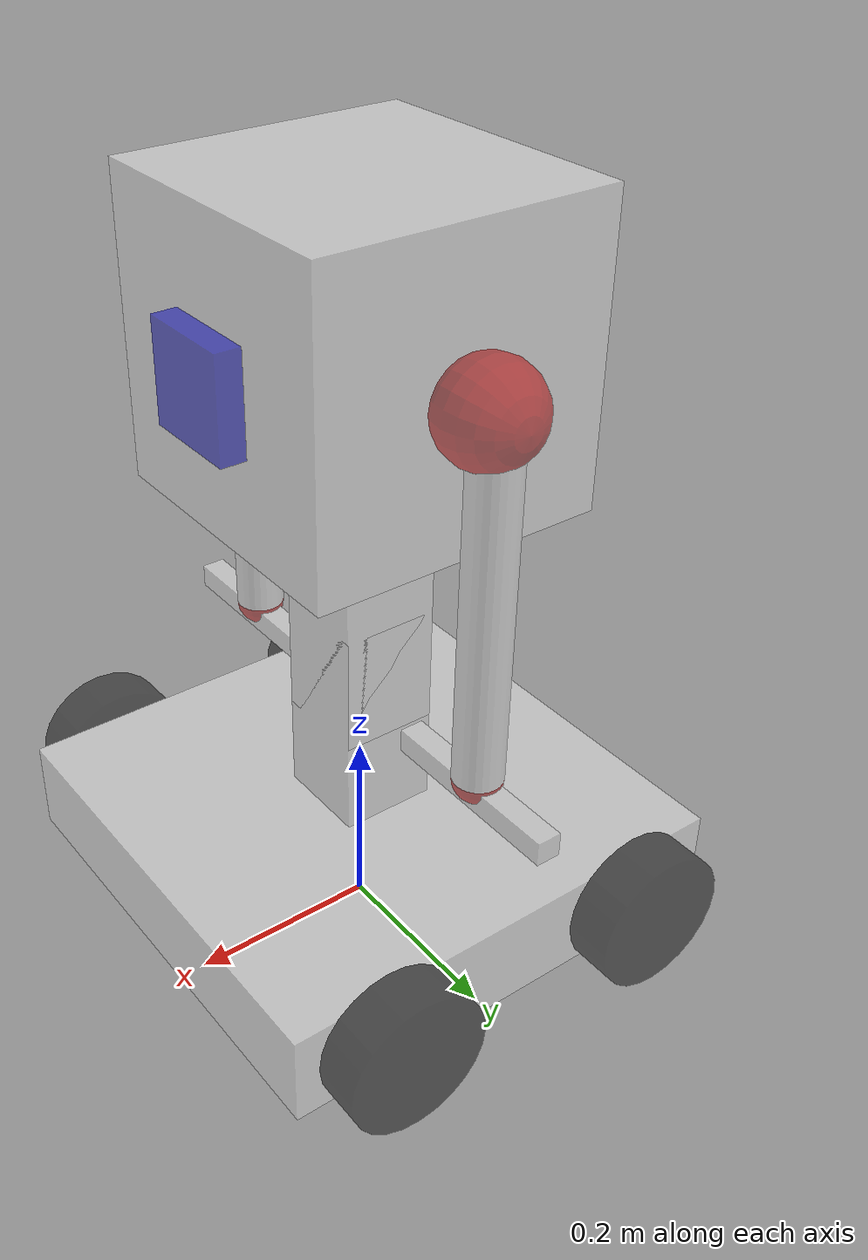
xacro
<?xml version="1.0"?>
<robot xmlns:xacro="http://www.ros.org/wiki/xacro" name="fetch">

  <!-- Extra files to be included -->
  <xacro:include filename="$(find fetch_description)/urdf/fetch.rvizmats.xacro" />
  <xacro:include filename="$(find fetch_description)/urdf/fetch.macros.xacro" />
  <xacro:include filename="$(find fetch_description)/urdf/fetch.gazebo.xacro" />

  <link name="base_link" />

  <link name="chassis">
    <visual>
      <xacro:create_box_geometry length="0.5" width="0.5" height="0.1" />
      <material name="white" />
    </visual>
    <collision>
      <xacro:create_box_geometry length="0.5" width="0.5" height="0.1" />
    </collision>
    <xacro:create_box_inertial length="0.5" width="0.5" height="0.1" />
  </link>

  <joint name="chassis_joint" type="fixed">
    <parent link="base_link" />
    <child link="chassis" />
    <origin xyz="0 0 0.1" rpy="0 0 0" />
  </joint>

  <link name="lower_mount">
    <visual>
      <xacro:create_box_geometry length="0.1" width="0.1" height="0.25" />
      <material name="white" />
    </visual>
    <collision>
      <xacro:create_box_geometry length="0.1" width="0.1" height="0.25" />
    </collision>
    <xacro:create_box_inertial length="0.1" width="0.1" height="0.25" />
  </link>

  <joint name="mount_swivel" type="fixed">
    <parent link="chassis" />
    <child link="lower_mount" />
    <origin xyz="0 0 0.15" rpy="0 0 0" />
    <axis xyz="0 0 1" />
  </joint>

  <link name="upper_mount">
    <visual>
      <xacro:create_box_geometry length="0.1" width="0.1" height="0.25" />
      <material name="white" />
    </visual>
    <collision>
      <xacro:create_box_geometry length="0.1" width="0.1" height="0.25" />
    </collision>
    <xacro:create_box_inertial length="0.1" width="0.1" height="0.25" />
  </link>

  <joint name="upper_mount_to_hinge" type="fixed">
    <parent link="lower_mount" />
    <child link="upper_mount" />
    <origin xyz="0 0 0.125" rpy="0 0 0" />
  </joint>

  <link name="camera_box">
    <visual>
      <xacro:create_box_geometry length="0.3" width="0.3" height="0.3" />
      <material name="white" />
    </visual>
    <collision>
      <xacro:create_box_geometry length="0.3" width="0.3" height="0.3" />
    </collision>
    <xacro:create_box_inertial length="0.3" width="0.3" height="0.3" />
  </link>

  <joint name="camera_to_mount" type="fixed">
    <parent link="upper_mount" />
    <child link="camera_box" />
    <origin xyz="0 0 0.275" rpy="0 0 0" />
  </joint>

  <link name="camera">
    <visual>
      <xacro:create_box_geometry length="0.05" width="0.1" height="0.1" />
      <material name="blue" />
    </visual>
    <collision>
      <xacro:create_box_geometry length="0.05" width="0.1" height="0.1" />
    </collision>
    <xacro:create_box_inertial length="0.05" width="0.1" height="0.1" />
  </link>

  <joint name="attach_camera" type="fixed">
    <parent link="camera_box" />
    <child link="camera" />
    <origin xyz="0.15 0 0" rpy="0 0 0" />
  </joint>

  <!-- Create all 4 wheels -->
  <xacro:create_wheel reflect_lr="1" reflect_fr="1" wheel_id="front_left" parent_name="chassis" />
  <xacro:create_wheel reflect_lr="1" reflect_fr="-1" wheel_id="rear_left" parent_name="chassis" />
  <xacro:create_wheel reflect_lr="-1" reflect_fr="1" wheel_id="front_right" parent_name="chassis" />
  <xacro:create_wheel reflect_lr="-1" reflect_fr="-1" wheel_id="rear_right" parent_name="chassis" />

  <!-- Create both arms -->
  <xacro:create_arm reflect_lr="1" arm_id="left" parent_name="camera_box" />
  <xacro:create_arm reflect_lr="-1" arm_id="right" parent_name="camera_box" />

</robot>

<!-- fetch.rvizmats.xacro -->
<robot xmlns:xacro="http://www.ros.org/wiki/xacro" name="fetch">

    <material name="black">
        <color rgba="0.0 0.0 0.0 0.5" />
    </material>

    <material name="blue">
        <color rgba="0.0 0.0 0.8 0.5" />
    </material>

    <material name="red">
        <color rgba="0.8 0.0 0.0 0.5" />
    </material>

    <material name="white">
        <color rgba="1.0 1.0 1.0 0.5" />
    </material>

</robot>

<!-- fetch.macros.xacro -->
<robot xmlns:xacro="http://www.ros.org/wiki/xacro" name="fetch">

  <!-- Create box geometry -->
  <xacro:macro name="create_box_geometry" params="length width height">
    <origin xyz="0 0 0" rpy="0 0 0" />
    <geometry>
      <box size="${length} ${width} ${height}" />
    </geometry>
  </xacro:macro>

  <!-- Macro for creating a cylinder inertial element -->
  <xacro:macro name="create_box_inertial" params="length width height">
    <xacro:property name="mass" value="${length*width*height}" />
      <inertial>
          <mass value="${mass}" />
          <origin xyz="0 0 0" rpy="0 0 0" />
          <inertia
              ixx="${(1/6)*mass*((length**2*width**2+length**2*height**2+height**2*width**2)/(length**2+width**2+height**2))}"
              ixy="0"
              ixz="0"
              iyy="${(1/6)*mass*((length**2*width**2+length**2*height**2+height**2*width**2)/(length**2+width**2+height**2))}"
              iyz="0"
              izz="${(1/6)*mass*((length**2*width**2+length**2*height**2+height**2*width**2)/(length**2+width**2+height**2))}"
              />
      </inertial>
  </xacro:macro>

  <!-- Create cylinder geometry -->
  <xacro:macro name="create_cylinder_geometry" params="radius length">
    <origin xyz="0 0 0" rpy="0 0 0" />
    <geometry>
      <cylinder radius="${radius}" length="${length}" />
    </geometry>
  </xacro:macro>

  <!-- Create cylinder interia matrix -->
  <xacro:macro name="create_cylinder_inertial" params="radius length">
    <xacro:property name="mass" value="${pi*radius**2*length}" />
      <inertial>
          <mass value="${mass}" />
          <origin xyz="0 0 0" rpy="0 0 0" />
          <inertia
              ixx="${(1/12)*mass*(3*radius**2 + length**2)}"
              ixy="0"
              ixz="0"
              iyy="${(1/12)*mass*(3*radius**2 + length**2)}"
              iyz="0"
              izz="${(1/2)*mass*radius**2}"
              />
      </inertial>
  </xacro:macro>

  <!-- Create sphere geometry -->
  <xacro:macro name="create_sphere_geometry" params="radius">
    <origin xyz="0 0 0" rpy="0 0 0" />
    <geometry>
      <sphere radius="${radius}" />
    </geometry>
  </xacro:macro>

  <!-- Creating sphere inertia matrix -->
  <xacro:macro name="create_sphere_inertial" params="radius">
    <xacro:property name="mass" value="${(4/3)*pi*radius**3}" />
      <inertial>
          <mass value="${mass}" />
          <inertia
              ixx="${(2/5) * mass * radius * radius}"
              ixy="0"
              ixz="0"
              iyy="${(2/5) * mass * radius * radius}"
              iyz="0"
              izz="${(2/5) * mass * radius * radius}"
              />
      </inertial>
  </xacro:macro>

  <!-- Macro for creating wheels -->
  <xacro:macro name="create_wheel" params="reflect_lr reflect_fr wheel_id parent_name">
    <xacro:property name="wheel_name" value="${wheel_id}_wheel" />

    <link name="${wheel_name}">
      <visual>
        <xacro:create_cylinder_geometry radius="0.075" length="0.05" />
        <material name="black" />
      </visual>
      <collision>
        <xacro:create_sphere_geometry radius="0.075" />
      </collision>
      <xacro:create_cylinder_inertial radius="0.075" length="0.05"/>
    </link>

    <joint name="${wheel_name}_joint" type="continuous">
      <parent link="${parent_name}" />
      <child link="${wheel_name}" />
      <origin xyz="${0.15 * reflect_fr} ${0.275 * reflect_lr} 0" rpy="1.570795 0 3.14" />
      <axis xyz="0 0 1" />
    </joint>

  </xacro:macro>

  <!-- Macro for creating arms -->
  <xacro:macro name="create_arm" params="reflect_lr arm_id parent_name">

    <link name="${arm_id}_socket">
      <visual>
        <xacro:create_sphere_geometry radius="0.05" />
        <material name="red" />
      </visual>
      <collision>
        <xacro:create_sphere_geometry radius="0.05" />
      </collision>
      <xacro:create_sphere_inertial radius="0.05" />
    </link>

    <joint name="${arm_id}_socket_to_box" type="revolute">
      <parent link="${parent_name}" />
      <child link="${arm_id}_socket" />
      <limit effort="1000.0" lower="0" upper="3.14" velocity="0.5"/>
      <origin xyz="0 ${0.175 * reflect_lr} 0" rpy="1.570795 1.570795 0" />
      <axis xyz="0 0 1" />
    </joint>

    <link name="${arm_id}_gripper">
      <visual>
        <xacro:create_cylinder_geometry radius="0.025" length="0.33" />
        <material name="white" />
      </visual>
      <collision>
        <xacro:create_cylinder_geometry radius="0.025" length="0.33" />
      </collision>
      <xacro:create_cylinder_inertial radius="0.025" length="0.33" />
    </link>

    <joint name="${arm_id}_gripper_to_socket" type="fixed">
      <parent link="${arm_id}_socket" />
      <child link="${arm_id}_gripper" />
      <origin xyz="0.2 0 ${-0.01 * reflect_lr}" rpy="0 1.570795 0" />
    </joint>

    <link name="${arm_id}_wrist">
      <visual>
        <xacro:create_sphere_geometry radius="0.025" />
        <material name="red" />
      </visual>
      <collision>
        <xacro:create_sphere_geometry radius="0.025" />
      </collision>
      <xacro:create_sphere_inertial radius="0.025" />
    </link>

    <joint name="${arm_id}_wrist_to_gripper" type="revolute">
      <parent link="${arm_id}_gripper" />
      <child link="${arm_id}_wrist" />
      <limit effort="1000.0" lower="1.570795" upper="1.570795" velocity="0.5"/>
      <origin xyz="0 0 0.1667" rpy="0 0 ${1.570795 * reflect_lr}" />
      <axis xyz="0 0 1" />
    </joint>

    <link name="${arm_id}_hand">
      <visual>
        <xacro:create_box_geometry length="0.2" width="0.025" height="0.025" />
        <material name="white" />
      </visual>
      <collision>
        <xacro:create_box_geometry length="0.2" width="0.025" height="0.025" />
      </collision>
      <xacro:create_box_inertial length="0.2" width="0.025" height="0.025" />
    </link>

    <joint name="${arm_id}_hand_to_wrist" type="fixed">
      <parent link="${arm_id}_wrist" />
      <child link="${arm_id}_hand" />
      <origin xyz="0 0 0.015" rpy="0 0 0" />
    </joint>

  </xacro:macro>

</robot>
